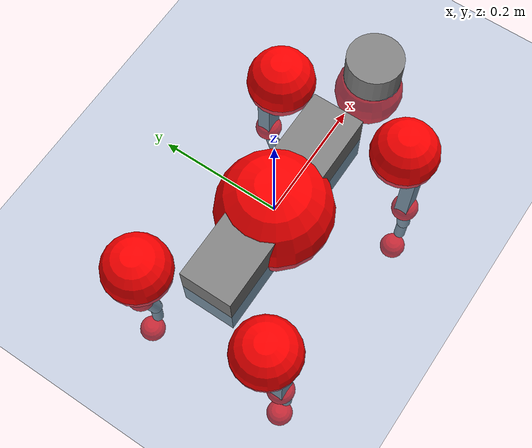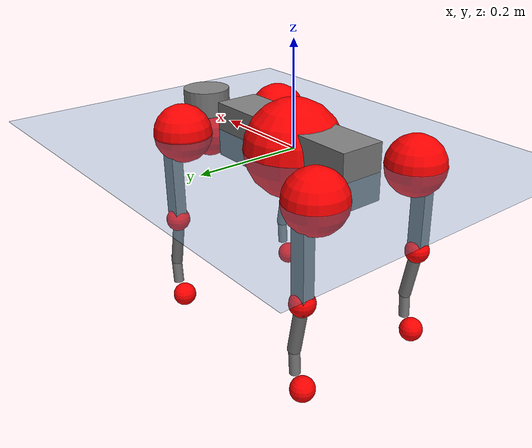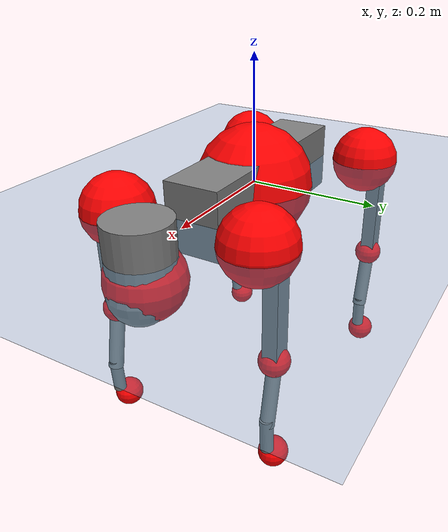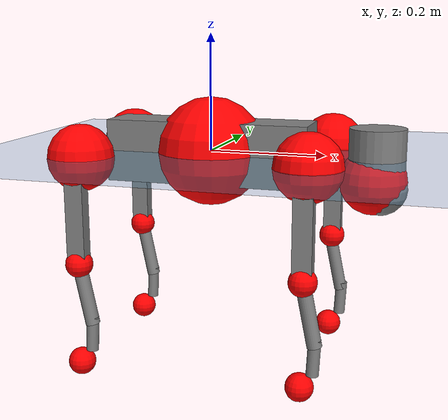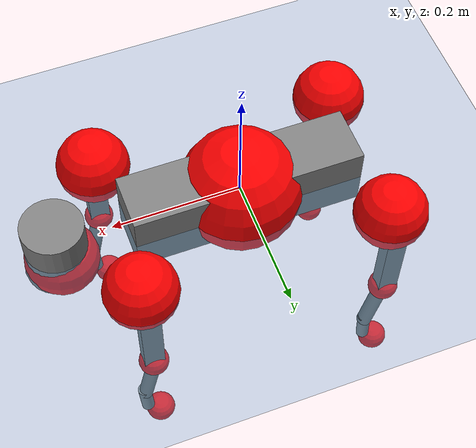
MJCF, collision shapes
<mujoco model="go2">
  <compiler angle="radian" assetdir="assets" balanceinertia="true" inertiafromgeom="false"/>

  <option timestep="0.005" density="1.2" viscosity="2e-05"/>

  <size nkey="1"/>

  <visual>
    <quality shadowsize="8192"/>
    <map shadowclip="0.5"/>
  </visual>

  <default>
    <default class="/">
      <geom contype="0" conaffinity="0" group="1" solref="-1000 -80"/>
      <site size="0.01 0.005 0.005" group="5"/>
      <general forcelimited="true" biastype="affine" gainprm="20" biasprm="0 -20 -0.5"/>
      <default class="go2">
        <joint armature="0.01" damping="0.01" frictionloss="0.2"/>
        <geom condim="1" margin="0.001"/>
        <default class="visual">
          <geom type="mesh" group="2"/>
        </default>
        <default class="collision">
          <geom group="3"/>
          <default class="foot">
            <geom size="0.022 0 0" condim="6" priority="1" friction="0.8 0.02 0.01" solimp="0.015 1 0.022"/>
          </default>
        </default>
        <default class="reward_collision_sphere">
          <geom group="5" rgba="1 0 0 1"/>
        </default>
      </default>
    </default>
  </default>

  <asset>
    <texture type="skybox" colorspace="auto" name="//unnamed_texture_0" builtin="gradient" rgb1="0.95 0.95 0.95" rgb2="0.95 0.95 0.95" width="100" height="600"/>
    <texture type="2d" colorspace="auto" name="texplane" builtin="checker" rgb1="0.345 0.575 0.748" rgb2="0.345 0.575 0.748" markrgb="1 1 1" width="512" height="512"/>
    <material name="MatPlane" class="/" texture="texplane" texuniform="true" texrepeat="2 2" specular="0.9"/>
    <material name="metal" class="/" rgba="0.9 0.95 0.95 1"/>
    <material name="black" class="/" rgba="0 0 0 1"/>
    <material name="white" class="/"/>
    <material name="gray" class="/" rgba="0.671705 0.692426 0.77427 1"/>
    <mesh name="base_0" class="/" file="base_0.obj"/>
    <mesh name="base_1" class="/" file="base_1.obj"/>
    <mesh name="base_2" class="/" file="base_2.obj"/>
    <mesh name="base_3" class="/" file="base_3.obj"/>
    <mesh name="base_4" class="/" file="base_4.obj"/>
    <mesh name="hip_0" class="/" file="hip_0.obj"/>
    <mesh name="hip_1" class="/" file="hip_1.obj"/>
    <mesh name="thigh_0" class="/" file="thigh_0.obj"/>
    <mesh name="thigh_1" class="/" file="thigh_1.obj"/>
    <mesh name="thigh_mirror_0" class="/" file="thigh_mirror_0.obj"/>
    <mesh name="thigh_mirror_1" class="/" file="thigh_mirror_1.obj"/>
    <mesh name="calf_0" class="/" file="calf_0.obj"/>
    <mesh name="calf_1" class="/" file="calf_1.obj"/>
    <mesh name="calf_mirror_0" class="/" file="calf_mirror_0.obj"/>
    <mesh name="calf_mirror_1" class="/" file="calf_mirror_1.obj"/>
    <mesh name="foot" class="/" file="foot.obj"/>
  </asset>

  <worldbody>
    <geom name="floor" class="/" size="100 100 0.125" type="plane" group="0" material="MatPlane"/>
    <light name="toplight_shadow" class="/" pos="0 0 5" dir="0.0990148 0.0990148 -0.990148" type="directional" ambient="0.04 0.04 0.04" diffuse="0.55 0.55 0.55" specular="0.12 0.12 0.12"/>
    <light name="toplight_fill" class="/" pos="0 0 5" dir="0.0990148 0.0990148 -0.990148" type="directional" castshadow="false" ambient="0.04 0.04 0.04" diffuse="0.3 0.3 0.3" specular="0.08 0.08 0.08"/>
    <body name="trunk" childclass="go2" pos="-0.000170496 -0.000142117 -0.000420667" quat="1 -0.000156694 -0.000354438 0.000153787">
      <inertial pos="0.0195454 -0.0002393 -0.0038537" quat="0.000983203 0.713439 -0.000590202 0.700716" mass="5.81636" diaginertia="0.107807 0.0933393 0.00965479"/>
      <joint name="//unnamed_joint_0" type="free" armature="0" damping="0" frictionloss="0"/>
      <geom name="//unnamed_geom_1" class="visual" material="black" mesh="base_0"/>
      <geom name="//unnamed_geom_2" class="visual" material="black" mesh="base_1"/>
      <geom name="//unnamed_geom_3" class="visual" material="black" mesh="base_2"/>
      <geom name="//unnamed_geom_4" class="visual" material="white" mesh="base_3"/>
      <geom name="//unnamed_geom_5" class="visual" material="gray" mesh="base_4"/>
      <geom name="trunk_1" class="collision" size="0.177007 0.043993 0.0536386" type="box"/>
      <geom name="trunk_2" class="collision" size="0.0470514 0.0423462" pos="0.28566 0 0.00829871" type="cylinder"/>
      <geom name="trunk_3" class="collision" size="0.0442283" pos="0.293679 0 -0.0497923"/>
      <geom name="//unnamed_geom_9" class="reward_collision_sphere" size="0.0941027"/>
      <geom name="//unnamed_geom_10" class="reward_collision_sphere" size="0.0564616" pos="0.280648 0 -0.0373442"/>
      <site name="imu" pos="-0.0218813 0.000169632 0.0314851" size="0.00941027"/>
      <camera name="track" pos="0 -1.98179 0" quat="0.707107 0.707107 0 0" mode="trackcom"/>
      <camera name="ego_camera" pos="0.312723 0 0.0373442" quat="-0.5 -0.5 0.5 0.5"/>
      <body name="FL_hip" pos="0.193702 0.0466962 0.00246513" quat="1 0.000159068 0.000189742 0.000156974">
        <inertial pos="-0.00534798 0.00264104 0.000123482" quat="0.496561 0.4995 0.505717 0.498174" mass="0.548142" diaginertia="0.000879679 0.00055962 0.000185439"/>
        <joint name="FL_hip_joint" pos="0 0 0" axis="1 -0.00037347 -6.25771e-05" stiffness="0.000296934" range="-1.0504 1.03532" armature="0.00926911" damping="0.00170935" frictionloss="0.195238"/>
        <geom name="//unnamed_geom_11" class="visual" material="metal" mesh="hip_0"/>
        <geom name="//unnamed_geom_12" class="visual" material="gray" mesh="hip_1"/>
        <geom name="//unnamed_geom_13" class="collision" size="0.0432873 0.0188205" pos="0 0.0792716 0" quat="0.707107 0.707107 0 0" type="cylinder"/>
        <geom name="//unnamed_geom_14" class="reward_collision_sphere" size="0.0564616" pos="0 0.0693626 0"/>
        <body name="FL_thigh" pos="0.000334612 0.0954076 0.00102721" quat="1 -0.000187058 0.00012738 -0.000179337">
          <inertial pos="-0.0040921 -0.0218541 -0.0279233" quat="0.829195 0.0850885 -0.0188455 0.552123" mass="0.967567" diaginertia="0.0060113 0.00549534 0.000345403"/>
          <joint name="FL_thigh_joint" pos="0 0 0" axis="-0.00800786 0.999966 -0.00212577" stiffness="0.00338303" range="-1.56095 3.47788" armature="0.00929601" damping="0.00564287" frictionloss="0.196966"/>
          <geom name="//unnamed_geom_15" class="visual" material="metal" mesh="thigh_0"/>
          <geom name="//unnamed_geom_16" class="visual" material="gray" mesh="thigh_1"/>
          <geom name="//unnamed_geom_17" class="collision" size="0.100219 0.0115276 0.0159975" pos="0 0 -0.0883813" quat="0.707107 0 0.707107 0" type="box"/>
          <body name="FL_calf" pos="-0.000778018 -0.000458598 -0.177168" quat="1 0.000165508 4.75687e-05 7.05051e-06">
            <inertial pos="0.00616739 -9.33259e-05 -0.115804" quat="0.710714 0.00135409 -0.00438078 0.703466" mass="0.200133" diaginertia="0.00149715 0.00139066 2.08954e-05"/>
            <joint name="FL_calf_joint" pos="0 0 0" axis="-0.0038845 0.999992 0.00110028" range="-2.74088 -0.832181" armature="0.00926767" damping="0.000546545" frictionloss="0.189726"/>
            <geom name="//unnamed_geom_18" class="visual" material="gray" mesh="calf_0"/>
            <geom name="//unnamed_geom_19" class="visual" material="black" mesh="calf_1"/>
            <geom name="FL_calf0" class="collision" size="0.0112923 0.0564616" pos="0.00801853 0 -0.0497923" quat="0.994493 0 -0.104807 0" type="cylinder"/>
            <geom name="//unnamed_geom_21" class="collision" size="0.0103513 0.0305834" pos="0.0200463 0 -0.122821" quat="0.999688 0 0.0249974 0" type="cylinder"/>
            <geom name="//unnamed_geom_22" class="visual" pos="0 0 -0.176763" quat="1 0 0 0" material="black" mesh="foot"/>
            <geom name="FL_foot" class="foot" size="0.0184775" pos="-0.00200463 0 -0.176763"/>
            <geom name="//unnamed_geom_24" class="reward_collision_sphere" size="0.0235257"/>
            <geom name="//unnamed_geom_25" class="reward_collision_sphere" size="0.0235257" pos="-0.00200463 0 -0.176763"/>
            <site name="FL_foot" class="foot" pos="-0.00200463 0 -0.176763" size="0.00941027"/>
          </body>
        </body>
      </body>
      <body name="FR_hip" pos="0.19382 -0.0465287 0.000767303" quat="1 4.23826e-05 0.000108917 -8.26111e-05">
        <inertial pos="-0.00436521 -0.00334647 0.000443342" quat="0.500803 0.503938 0.495137 0.500082" mass="0.569525" diaginertia="0.000902114 0.000577901 0.000191077"/>
        <joint name="FR_hip_joint" pos="0 0 0" axis="0.999996 0.00149506 -0.00247027" range="-1.03905 1.04512" armature="0.00956799" damping="0.0112962" frictionloss="0.183217"/>
        <geom name="//unnamed_geom_26" class="visual" pos="0 1.40277e-09 6.01678e-08" quat="4.63268e-05 1 0 0" material="metal" mesh="hip_0"/>
        <geom name="//unnamed_geom_27" class="visual" pos="0 2.27406e-09 -1.48818e-07" quat="4.63268e-05 1 0 0" material="gray" mesh="hip_1"/>
        <geom name="//unnamed_geom_28" class="collision" size="0.0432873 0.0188205" pos="0 -0.0792716 0" quat="0.707107 0.707107 0 0" type="cylinder"/>
        <geom name="//unnamed_geom_29" class="reward_collision_sphere" size="0.0564616" pos="0 -0.0693626 0"/>
        <body name="FR_thigh" pos="-0.000468144 -0.0943663 -8.4411e-05" quat="1 -8.13673e-05 -0.000177328 2.56639e-05">
          <inertial pos="-0.00265614 0.0224088 -0.0260707" quat="0.551463 -0.023882 0.0872353 0.829282" mass="0.951151" diaginertia="0.00604393 0.00554356 0.000347066"/>
          <joint name="FR_thigh_joint" pos="0 0 0" axis="-0.0026236 -0.999996 0.0012178" range="-3.49894 1.56159" armature="0.00975899" damping="0.0144432" frictionloss="0.181188"/>
          <geom name="//unnamed_geom_30" class="visual" material="metal" mesh="thigh_mirror_0"/>
          <geom name="//unnamed_geom_31" class="visual" material="gray" mesh="thigh_mirror_1"/>
          <geom name="//unnamed_geom_32" class="collision" size="0.100219 0.0115276 0.0159975" pos="0 0 -0.0883813" quat="0.707107 0 0.707107 0" type="box"/>
          <body name="FR_calf" pos="0.000673613 -0.00138031 -0.176526" quat="1 -0.000321306 -0.000233557 -0.000251031">
            <inertial pos="0.0067007 0.000807325 -0.117472" quat="0.703717 -0.00454113 -0.00404915 0.710455" mass="0.198195" diaginertia="0.00148919 0.00140871 2.08548e-05"/>
            <joint name="FR_calf_joint" pos="0 0 0" axis="-0.00375102 -0.999989 0.00295549" range="0.819615 2.74059" armature="0.0093308" damping="0.0128696" frictionloss="0.180338"/>
            <geom name="//unnamed_geom_33" class="visual" material="gray" mesh="calf_mirror_0"/>
            <geom name="//unnamed_geom_34" class="visual" material="black" mesh="calf_mirror_1"/>
            <geom name="FR_calf0" class="collision" size="0.0122334 0.0564616" pos="0.0100232 0 -0.0497923" quat="0.995004 0 -0.0998334 0" type="cylinder"/>
            <geom name="//unnamed_geom_36" class="collision" size="0.0103513 0.0305834" pos="0.0200463 0 -0.122821" quat="0.999688 0 0.0249974 0" type="cylinder"/>
            <geom name="//unnamed_geom_37" class="visual" pos="0 0 -0.176763" quat="1 0 0 0" material="black" mesh="foot"/>
            <geom name="FR_foot" class="foot" size="0.0217286" pos="-0.00200463 0 -0.176763"/>
            <geom name="//unnamed_geom_39" class="reward_collision_sphere" size="0.0235257"/>
            <geom name="//unnamed_geom_40" class="reward_collision_sphere" size="0.0235257" pos="-0.00200463 0 -0.176763"/>
            <site name="FR_foot" class="foot" pos="-0.00200463 0 -0.176763" size="0.00941027"/>
          </body>
        </body>
      </body>
      <body name="RL_hip" pos="-0.193536 0.0469391 -0.00144278" quat="1 1.58647e-05 1.18638e-05 1.6157e-05">
        <inertial pos="0.00528829 0.00153069 -0.00157374" quat="0.506018 0.498378 0.496963 0.498592" mass="0.57096" diaginertia="0.000921939 0.000572969 0.000193307"/>
        <joint name="RL_hip_joint" pos="0 0 0" axis="-0.999789 -0.0018973 0.0204516" stiffness="0.00413099" range="-1.05042 1.04102" armature="0.00933972" damping="0.00379289" frictionloss="0.18804"/>
        <geom name="//unnamed_geom_41" class="visual" pos="-1.50227e-09 0 -2.9448e-07" quat="4.63268e-05 0 1 0" material="metal" mesh="hip_0"/>
        <geom name="//unnamed_geom_42" class="visual" pos="-2.43536e-09 0 -2.61161e-07" quat="4.63268e-05 0 1 0" material="gray" mesh="hip_1"/>
        <geom name="//unnamed_geom_43" class="collision" size="0.0432873 0.0188205" pos="0 0.0792716 0" quat="0.707107 0.707107 0 0" type="cylinder"/>
        <geom name="//unnamed_geom_44" class="reward_collision_sphere" size="0.0564616" pos="0 0.0693626 0"/>
        <body name="RL_thigh" pos="4.20248e-05 0.0949088 -0.00123637" quat="1 -9.2786e-05 -0.00032403 0.000102249">
          <inertial pos="-0.00508562 -0.022385 -0.0282059" quat="0.830034 0.0850201 -0.0195867 0.550846" mass="0.975817" diaginertia="0.00596817 0.00557909 0.00034617"/>
          <joint name="RL_thigh_joint" pos="0 0 0" axis="-0.00180351 0.999997 0.00181933" stiffness="0.00611111" range="-0.504471 4.55317" armature="0.00963839" damping="0.00763168" frictionloss="0.187472"/>
          <geom name="//unnamed_geom_45" class="visual" material="metal" mesh="thigh_0"/>
          <geom name="//unnamed_geom_46" class="visual" material="gray" mesh="thigh_1"/>
          <geom name="//unnamed_geom_47" class="collision" size="0.100219 0.0115276 0.0159975" pos="0 0 -0.0883813" quat="0.707107 0 0.707107 0" type="box"/>
          <body name="RL_calf" pos="0.00119639 -0.00130406 -0.176715" quat="1 0.000133325 -6.43476e-05 -0.00016431">
            <inertial pos="0.00538311 1.59295e-05 -0.116919" quat="0.708182 0.00339651 -0.00593436 0.705997" mass="0.204611" diaginertia="0.00154954 0.00142893 2.12672e-05"/>
            <joint name="RL_calf_joint" pos="0 0 0" axis="0.00630205 0.999976 -0.00290642" range="-2.71725 -0.825258" armature="0.00976793" damping="0.00314582" frictionloss="0.188397"/>
            <geom name="//unnamed_geom_48" class="visual" material="gray" mesh="calf_0"/>
            <geom name="//unnamed_geom_49" class="visual" material="black" mesh="calf_1"/>
            <geom name="RL_calf0" class="collision" size="0.0122334 0.0564616" pos="0.0100232 0 -0.0497923" quat="0.995004 0 -0.0998334 0" type="cylinder"/>
            <geom name="//unnamed_geom_51" class="collision" size="0.0103513 0.0305834" pos="0.0200463 0 -0.122821" quat="0.999688 0 0.0249974 0" type="cylinder"/>
            <geom name="//unnamed_geom_52" class="visual" pos="0 0 -0.176763" quat="1 0 0 0" material="black" mesh="foot"/>
            <geom name="RL_foot" class="foot" size="0.0181998" pos="-0.00200463 0 -0.176763"/>
            <geom name="//unnamed_geom_54" class="reward_collision_sphere" size="0.0235257"/>
            <geom name="//unnamed_geom_55" class="reward_collision_sphere" size="0.0235257" pos="-0.00200463 0 -0.176763"/>
            <site name="RL_foot" class="foot" pos="-0.00200463 0 -0.176763" size="0.00941027"/>
          </body>
        </body>
      </body>
      <body name="RR_hip" pos="-0.192406 -0.0457487 -0.00225981" quat="1 -5.13131e-05 0.000117124 0.000203434">
        <inertial pos="0.00619634 -0.0028536 -0.000934335" quat="0.495927 0.500977 0.502075 0.500998" mass="0.555472" diaginertia="0.000878368 0.00056088 0.000185547"/>
        <joint name="RR_hip_joint" pos="0 0 0" axis="-0.999991 0.00135395 0.00396671" range="-1.05451 1.02875" armature="0.00974387" damping="0.0085571" frictionloss="0.187579"/>
        <geom name="//unnamed_geom_56" class="visual" pos="1.50187e-09 1.40277e-09 -3.54647e-07" quat="2.14617e-09 4.63268e-05 4.63268e-05 -1" material="metal" mesh="hip_0"/>
        <geom name="//unnamed_geom_57" class="visual" pos="2.43634e-09 2.27406e-09 -1.12343e-07" quat="2.14617e-09 4.63268e-05 4.63268e-05 -1" material="gray" mesh="hip_1"/>
        <geom name="//unnamed_geom_58" class="collision" size="0.0432873 0.0188205" pos="0 -0.0792716 0" quat="0.707107 0.707107 0 0" type="cylinder"/>
        <geom name="//unnamed_geom_59" class="reward_collision_sphere" size="0.0564616" pos="0 -0.0693626 0"/>
        <body name="RR_thigh" pos="0.00124181 -0.0952927 -0.0015261" quat="1 -2.36659e-05 9.93424e-06 5.67643e-05">
          <inertial pos="-0.0034886 0.0212584 -0.0269495" quat="0.551543 -0.0202053 0.0842221 0.829638" mass="0.975017" diaginertia="0.00611056 0.00564303 0.00034787"/>
          <joint name="RR_thigh_joint" pos="0 0 0" axis="0.00602735 -0.999972 0.00449611" range="-4.55678 0.526232" armature="0.00916395" damping="0.0116854" frictionloss="0.18784"/>
          <geom name="//unnamed_geom_60" class="visual" material="metal" mesh="thigh_mirror_0"/>
          <geom name="//unnamed_geom_61" class="visual" material="gray" mesh="thigh_mirror_1"/>
          <geom name="//unnamed_geom_62" class="collision" size="0.100219 0.0115276 0.0159975" pos="0 0 -0.0883813" quat="0.707107 0 0.707107 0" type="box"/>
          <body name="RR_calf" pos="-2.43471e-06 0.000482178 -0.17733" quat="1 0.000298619 3.52009e-05 -0.00012942">
            <inertial pos="0.00601859 0.00148431 -0.117399" quat="0.703024 -0.00545225 0.00269562 0.711141" mass="0.202186" diaginertia="0.00152611 0.00139769 2.11221e-05"/>
            <joint name="RR_calf_joint" pos="0 0 0" axis="0.000327729 -1 -7.66437e-06" range="0.834084 2.73771" armature="0.00950988" damping="0.0119731" frictionloss="0.180491"/>
            <geom name="//unnamed_geom_63" class="visual" material="gray" mesh="calf_mirror_0"/>
            <geom name="//unnamed_geom_64" class="visual" material="black" mesh="calf_mirror_1"/>
            <geom name="RR_calf0" class="collision" size="0.0122334 0.0564616" pos="0.0100232 0 -0.0497923" quat="0.995004 0 -0.0998334 0" type="cylinder"/>
            <geom name="//unnamed_geom_66" class="collision" size="0.0103513 0.0305834" pos="0.0200463 0 -0.122821" quat="0.999688 0 0.0249974 0" type="cylinder"/>
            <geom name="//unnamed_geom_67" class="visual" pos="0 0 -0.176763" quat="1 0 0 0" material="black" mesh="foot"/>
            <geom name="RR_foot" class="foot" size="0.0223462" pos="-0.00200463 0 -0.176763"/>
            <geom name="//unnamed_geom_69" class="reward_collision_sphere" size="0.0235257"/>
            <geom name="//unnamed_geom_70" class="reward_collision_sphere" size="0.0235257" pos="-0.00200463 0 -0.176763"/>
            <site name="RR_foot" class="foot" pos="-0.00200463 0 -0.176763" size="0.00941027"/>
          </body>
        </body>
      </body>
    </body>
  </worldbody>

  <contact>
    <pair class="/" geom1="floor" geom2="FL_foot" name="//unnamed_contact_0"/>
    <pair class="/" geom1="floor" geom2="FR_foot" name="//unnamed_contact_1"/>
    <pair class="/" geom1="floor" geom2="RL_foot" name="//unnamed_contact_2"/>
    <pair class="/" geom1="floor" geom2="RR_foot" name="//unnamed_contact_3"/>
  </contact>

  <actuator>
    <general name="FL_hip" class="/" joint="FL_hip_joint" forcerange="-22.4822 22.4822" gainprm="19.3503" biasprm="0 -19.3503 -0.482801"/>
    <general name="FL_thigh" class="/" joint="FL_thigh_joint" forcerange="-21.546 21.546" gainprm="19.3503" biasprm="0 -19.3503 -0.482801"/>
    <general name="FL_calf" class="/" joint="FL_calf_joint" forcerange="-43.2689 43.2689" gainprm="19.3503" biasprm="0 -19.3503 -0.482801"/>
    <general name="FR_hip" class="/" joint="FR_hip_joint" forcerange="-22.1495 22.1495" gainprm="19.3503" biasprm="0 -19.3503 -0.482801"/>
    <general name="FR_thigh" class="/" joint="FR_thigh_joint" forcerange="-21.7451 21.7451" gainprm="19.3503" biasprm="0 -19.3503 -0.482801"/>
    <general name="FR_calf" class="/" joint="FR_calf_joint" forcerange="-41.7623 41.7623" gainprm="19.3503" biasprm="0 -19.3503 -0.482801"/>
    <general name="RL_hip" class="/" joint="RL_hip_joint" forcerange="-22.1945 22.1945" gainprm="19.3503" biasprm="0 -19.3503 -0.482801"/>
    <general name="RL_thigh" class="/" joint="RL_thigh_joint" forcerange="-22.7838 22.7838" gainprm="19.3503" biasprm="0 -19.3503 -0.482801"/>
    <general name="RL_calf" class="/" joint="RL_calf_joint" forcerange="-41.7751 41.7751" gainprm="19.3503" biasprm="0 -19.3503 -0.482801"/>
    <general name="RR_hip" class="/" joint="RR_hip_joint" forcerange="-21.961 21.961" gainprm="19.3503" biasprm="0 -19.3503 -0.482801"/>
    <general name="RR_thigh" class="/" joint="RR_thigh_joint" forcerange="-22.4793 22.4793" gainprm="19.3503" biasprm="0 -19.3503 -0.482801"/>
    <general name="RR_calf" class="/" joint="RR_calf_joint" forcerange="-43.0326 43.0326" gainprm="19.3503" biasprm="0 -19.3503 -0.482801"/>
  </actuator>

  <sensor>
    <gyro site="imu" name="imu_angular_velocity"/>
    <velocimeter site="imu" name="imu_linear_velocity"/>
    <framelinvel objtype="site" objname="FL_foot" name="FL_foot_global_linear_velocity"/>
    <framelinvel objtype="site" objname="FR_foot" name="FR_foot_global_linear_velocity"/>
    <framelinvel objtype="site" objname="RL_foot" name="RL_foot_global_linear_velocity"/>
    <framelinvel objtype="site" objname="RR_foot" name="RR_foot_global_linear_velocity"/>
  </sensor>

  <keyframe>
    <key name="home" qpos="0 0 0.325 1 0 0 0 0.1 0.8 -1.5 -0.1 -0.8 1.5 -0.1 0.8 -1.5 0.1 -0.8 1.5"/>
  </keyframe>
</mujoco>
